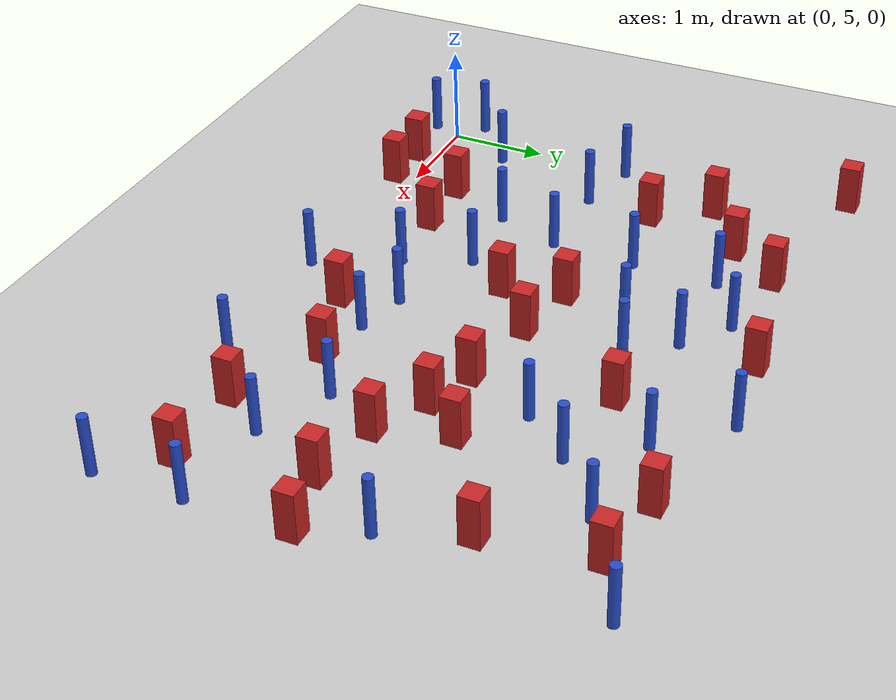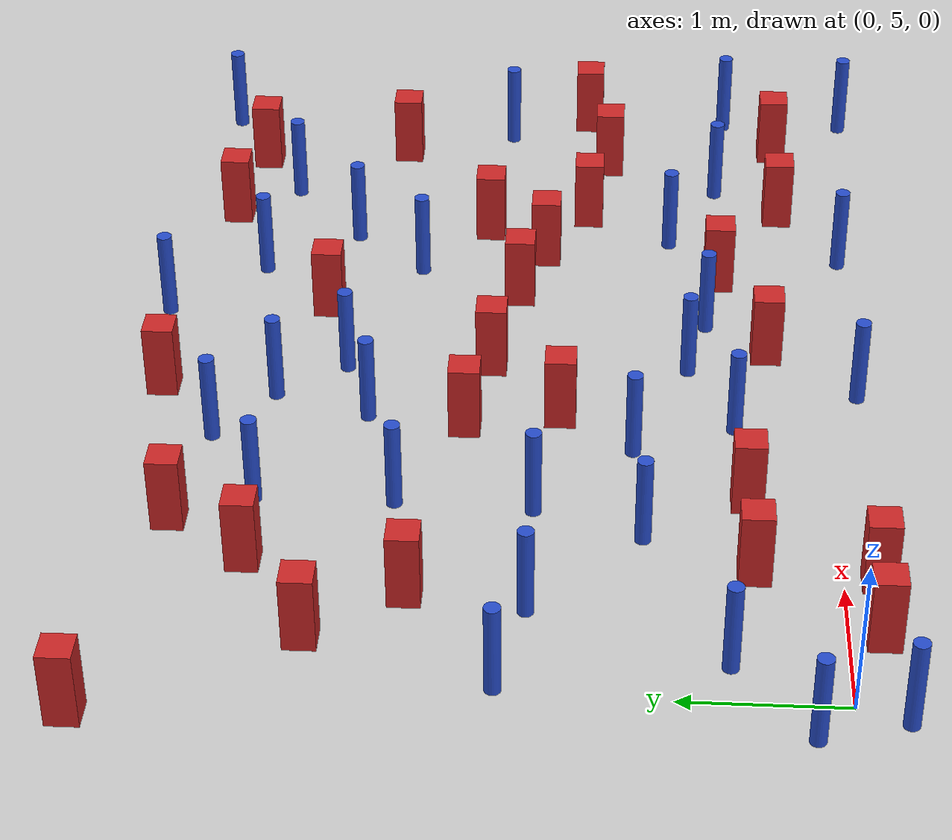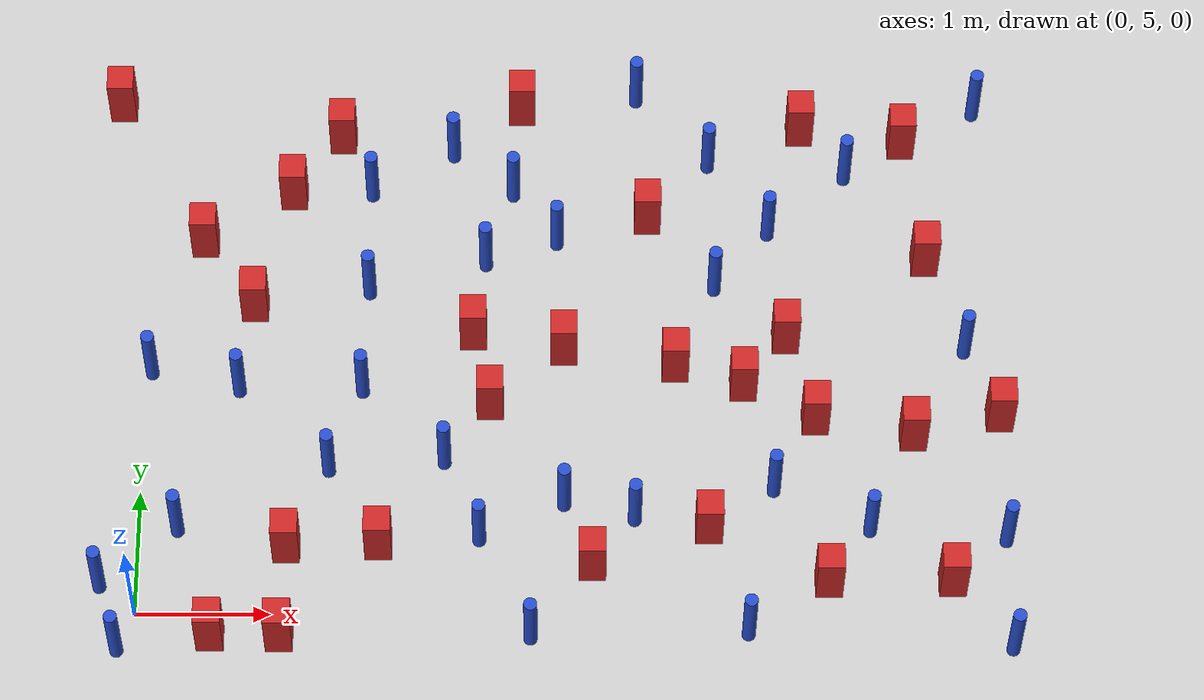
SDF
<sdf version="1.6">
 <world name="default">
  <model name="ground_plane">
   <static>1</static>
   <link name="link">
    <collision name="collision">
     <geometry><plane><normal>0 0 1</normal><size>100 100</size></plane></geometry>
     <surface><friction><ode><mu>100</mu><mu2>50</mu2></ode></friction></surface>
    </collision>
    <visual name="visual">
     <cast_shadows>0</cast_shadows>
     <geometry><plane><normal>0 0 1</normal><size>100 100</size></plane></geometry>
     <material>
      <ambient>1.0 1.0 1.0 1.0</ambient>
      <diffuse>0.8 0.8 0.8 1.0</diffuse>
      <specular>0.01 0.01 0.01 1.000000</specular>
     </material>
    </visual>
   </link>
  </model>
  <model name="pole_obstacle10">
   <static>true</static>
   <pose>6.43006931525 5.59276663731 7.38925637345e-09 -8.47170692796e-08 1.24976764786e-08 -1.74513093032e-07</pose>
   <link name="link">
    <pose>0 0 0.3 0 -0 0</pose>
    <inertial>
     <mass>1</mass>
     <inertia><ixx>0.145833</ixx><ixy>0</ixy><ixz>0</ixz><iyy>0.145833</iyy><iyz>0</iyz><izz>0.125</izz></inertia>
    </inertial>
    <collision name="collision">
     <geometry><cylinder><radius>0.05</radius><length>.6</length></cylinder></geometry>
    </collision>
    <visual name="visual">
     <geometry><cylinder><radius>0.05</radius><length>.6</length></cylinder></geometry>
     <material>
      <script><name>Gazebo/Blue</name><uri>file://media/materials/scripts/gazebo.material</uri></script>
     </material>
    </visual>
   </link>
  </model>
  <model name="pole_obstacle12">
   <static>true</static>
   <pose>6.43960804948 4.71248183484 7.38925637345e-09 -8.47170692796e-08 1.24976764786e-08 -1.74513093032e-07</pose>
   <link name="link">
    <pose>0 0 0.3 0 -0 0</pose>
    <inertial>
     <mass>1</mass>
     <inertia><ixx>0.145833</ixx><ixy>0</ixy><ixz>0</ixz><iyy>0.145833</iyy><iyz>0</iyz><izz>0.125</izz></inertia>
    </inertial>
    <collision name="collision">
     <geometry><cylinder><radius>0.05</radius><length>.6</length></cylinder></geometry>
    </collision>
    <visual name="visual">
     <geometry><cylinder><radius>0.05</radius><length>.6</length></cylinder></geometry>
     <material>
      <script><name>Gazebo/Blue</name><uri>file://media/materials/scripts/gazebo.material</uri></script>
     </material>
    </visual>
   </link>
  </model>
  <model name="pole_obstacle16">
   <static>true</static>
   <pose>2.56210407748 7.94373659365 7.38925637345e-09 -8.47170692798e-08 1.24976765033e-08 -1.74513093019e-07</pose>
   <link name="link">
    <pose>0 0 0.3 0 -0 0</pose>
    <inertial>
     <mass>1</mass>
     <inertia><ixx>0.145833</ixx><ixy>0</ixy><ixz>0</ixz><iyy>0.145833</iyy><iyz>0</iyz><izz>0.125</izz></inertia>
    </inertial>
    <collision name="collision">
     <geometry><cylinder><radius>0.05</radius><length>.6</length></cylinder></geometry>
    </collision>
    <visual name="visual">
     <geometry><cylinder><radius>0.05</radius><length>.6</length></cylinder></geometry>
     <material>
      <script><name>Gazebo/Blue</name><uri>file://media/materials/scripts/gazebo.material</uri></script>
     </material>
    </visual>
   </link>
  </model>
  <model name="pole_obstacle17">
   <static>true</static>
   <pose>3.67841027492 5.769085031 7.38925637345e-09 -8.47170692798e-08 1.24976765033e-08 -1.74513093019e-07</pose>
   <link name="link">
    <pose>0 0 0.3 0 -0 0</pose>
    <inertial>
     <mass>1</mass>
     <inertia><ixx>0.145833</ixx><ixy>0</ixy><ixz>0</ixz><iyy>0.145833</iyy><iyz>0</iyz><izz>0.125</izz></inertia>
    </inertial>
    <collision name="collision">
     <geometry><cylinder><radius>0.05</radius><length>.6</length></cylinder></geometry>
    </collision>
    <visual name="visual">
     <geometry><cylinder><radius>0.05</radius><length>.6</length></cylinder></geometry>
     <material>
      <script><name>Gazebo/Blue</name><uri>file://media/materials/scripts/gazebo.material</uri></script>
     </material>
    </visual>
   </link>
  </model>
  <model name="square_post_obstacle13">
   <static>true</static>
   <pose>2.60032660815 6.71405022309 1.91545236811e-07 -7.35059704564e-06 1.12565212e-07 2.39332434364e-05</pose>
   <link name="link">
    <pose>0 0 0.25 0 -0 0</pose>
    <inertial>
     <mass>100</mass>
     <inertia>
      <ixx>0.166667</ixx>
      <ixy>0</ixy>
      <ixz>0</ixz>
      <iyy>0.166667</iyy>
      <iyz>0</iyz>
      <izz>0.166667</izz>
     </inertia>
    </inertial>
    <collision name="collision"><geometry><box><size>.2 .2 .5</size></box></geometry></collision>
    <visual name="visual">
     <geometry><box><size>.2 .2 .5</size></box></geometry>
     <material>
      <script><name>Gazebo/Red</name><uri>file://media/materials/scripts/gazebo.material</uri></script>
     </material>
    </visual>
   </link>
  </model>
  <model name="pole_obstacle18">
   <static>true</static>
   <pose>-0.269620902724 5.22114954407 7.38925637345e-09 -8.47170692799e-08 1.24976765096e-08 -1.74513093014e-07</pose>
   <link name="link">
    <pose>0 0 0.3 0 -0 0</pose>
    <inertial>
     <mass>1</mass>
     <inertia><ixx>0.145833</ixx><ixy>0</ixy><ixz>0</ixz><iyy>0.145833</iyy><iyz>0</iyz><izz>0.125</izz></inertia>
    </inertial>
    <collision name="collision">
     <geometry><cylinder><radius>0.05</radius><length>.6</length></cylinder></geometry>
    </collision>
    <visual name="visual">
     <geometry><cylinder><radius>0.05</radius><length>.6</length></cylinder></geometry>
     <material>
      <script><name>Gazebo/Blue</name><uri>file://media/materials/scripts/gazebo.material</uri></script>
     </material>
    </visual>
   </link>
  </model>
  <model name="square_post_obstacle14">
   <static>true</static>
   <pose>-0.260426917664 9.33828999109 1.91545236811e-07 -7.35059704564e-06 1.12565212e-07 2.39332434364e-05</pose>
   <link name="link">
    <pose>0 0 0.25 0 -0 0</pose>
    <inertial>
     <mass>100</mass>
     <inertia>
      <ixx>0.166667</ixx>
      <ixy>0</ixy>
      <ixz>0</ixz>
      <iyy>0.166667</iyy>
      <iyz>0</iyz>
      <izz>0.166667</izz>
     </inertia>
    </inertial>
    <collision name="collision"><geometry><box><size>.2 .2 .5</size></box></geometry></collision>
    <visual name="visual">
     <geometry><box><size>.2 .2 .5</size></box></geometry>
     <material>
      <script><name>Gazebo/Red</name><uri>file://media/materials/scripts/gazebo.material</uri></script>
     </material>
    </visual>
   </link>
  </model>
  <model name="square_post_obstacle16">
   <static>true</static>
   <pose>1.10032722098 5.52364395335 1.91545236811e-07 -7.35059704564e-06 1.12565212e-07 2.39332434364e-05</pose>
   <link name="link">
    <pose>0 0 0.25 0 -0 0</pose>
    <inertial>
     <mass>100</mass>
     <inertia>
      <ixx>0.166667</ixx>
      <ixy>0</ixy>
      <ixz>0</ixz>
      <iyy>0.166667</iyy>
      <iyz>0</iyz>
      <izz>0.166667</izz>
     </inertia>
    </inertial>
    <collision name="collision"><geometry><box><size>.2 .2 .5</size></box></geometry></collision>
    <visual name="visual">
     <geometry><box><size>.2 .2 .5</size></box></geometry>
     <material>
      <script><name>Gazebo/Red</name><uri>file://media/materials/scripts/gazebo.material</uri></script>
     </material>
    </visual>
   </link>
  </model>
  <model name="pole_obstacle24">
   <static>true</static>
   <pose>0.29077984263 5.68026242619 7.38925637345e-09 -8.47170692799e-08 1.24976765101e-08 -1.74513093014e-07</pose>
   <link name="link">
    <pose>0 0 0.3 0 -0 0</pose>
    <inertial>
     <mass>1</mass>
     <inertia><ixx>0.145833</ixx><ixy>0</ixy><ixz>0</ixz><iyy>0.145833</iyy><iyz>0</iyz><izz>0.125</izz></inertia>
    </inertial>
    <collision name="collision">
     <geometry><cylinder><radius>0.05</radius><length>.6</length></cylinder></geometry>
    </collision>
    <visual name="visual">
     <geometry><cylinder><radius>0.05</radius><length>.6</length></cylinder></geometry>
     <material>
      <script><name>Gazebo/Blue</name><uri>file://media/materials/scripts/gazebo.material</uri></script>
     </material>
    </visual>
   </link>
  </model>
  <model name="pole_obstacle27">
   <static>true</static>
   <pose>6.32869426466 9.28908974941 7.38925637345e-09 -8.471706928e-08 1.24976765081e-08 -1.74513093015e-07</pose>
   <link name="link">
    <pose>0 0 0.3 0 -0 0</pose>
    <inertial>
     <mass>1</mass>
     <inertia><ixx>0.145833</ixx><ixy>0</ixy><ixz>0</ixz><iyy>0.145833</iyy><iyz>0</iyz><izz>0.125</izz></inertia>
    </inertial>
    <collision name="collision">
     <geometry><cylinder><radius>0.05</radius><length>.6</length></cylinder></geometry>
    </collision>
    <visual name="visual">
     <geometry><cylinder><radius>0.05</radius><length>.6</length></cylinder></geometry>
     <material>
      <script><name>Gazebo/Blue</name><uri>file://media/materials/scripts/gazebo.material</uri></script>
     </material>
    </visual>
   </link>
  </model>
  <model name="square_post_obstacle21">
   <static>true</static>
   <pose>3.15343993238 7.18347738808 1.91545236811e-07 -7.35059704564e-06 1.12565212e-07 2.39332434364e-05</pose>
   <link name="link">
    <pose>0 0 0.25 0 -0 0</pose>
    <inertial>
     <mass>100</mass>
     <inertia>
      <ixx>0.166667</ixx>
      <ixy>0</ixy>
      <ixz>0</ixz>
      <iyy>0.166667</iyy>
      <iyz>0</iyz>
      <izz>0.166667</izz>
     </inertia>
    </inertial>
    <collision name="collision"><geometry><box><size>.2 .2 .5</size></box></geometry></collision>
    <visual name="visual">
     <geometry><box><size>.2 .2 .5</size></box></geometry>
     <material>
      <script><name>Gazebo/Red</name><uri>file://media/materials/scripts/gazebo.material</uri></script>
     </material>
    </visual>
   </link>
  </model>
  <model name="square_post_obstacle27">
   <static>true</static>
   <pose>0.416787845511 8.12097560887 1.91545236811e-07 -7.35059704564e-06 1.12565212e-07 2.39332434364e-05</pose>
   <link name="link">
    <pose>0 0 0.25 0 -0 0</pose>
    <inertial>
     <mass>100</mass>
     <inertia>
      <ixx>0.166667</ixx>
      <ixy>0</ixy>
      <ixz>0</ixz>
      <iyy>0.166667</iyy>
      <iyz>0</iyz>
      <izz>0.166667</izz>
     </inertia>
    </inertial>
    <collision name="collision"><geometry><box><size>.2 .2 .5</size></box></geometry></collision>
    <visual name="visual">
     <geometry><box><size>.2 .2 .5</size></box></geometry>
     <material>
      <script><name>Gazebo/Red</name><uri>file://media/materials/scripts/gazebo.material</uri></script>
     </material>
    </visual>
   </link>
  </model>
  <model name="square_post_obstacle28">
   <static>true</static>
   <pose>4.50222056311 6.87441107333 1.91545236811e-07 -7.35059704564e-06 1.12565212e-07 2.39332434364e-05</pose>
   <link name="link">
    <pose>0 0 0.25 0 -0 0</pose>
    <inertial>
     <mass>100</mass>
     <inertia>
      <ixx>0.166667</ixx>
      <ixy>0</ixy>
      <ixz>0</ixz>
      <iyy>0.166667</iyy>
      <iyz>0</iyz>
      <izz>0.166667</izz>
     </inertia>
    </inertial>
    <collision name="collision"><geometry><box><size>.2 .2 .5</size></box></geometry></collision>
    <visual name="visual">
     <geometry><box><size>.2 .2 .5</size></box></geometry>
     <material>
      <script><name>Gazebo/Red</name><uri>file://media/materials/scripts/gazebo.material</uri></script>
     </material>
    </visual>
   </link>
  </model>
  <model name="pole_obstacle34">
   <static>true</static>
   <pose>4.71428031002 8.21276174655 7.38925637345e-09 -8.471706928e-08 1.24976765081e-08 -1.74513093015e-07</pose>
   <link name="link">
    <pose>0 0 0.3 0 -0 0</pose>
    <inertial>
     <mass>1</mass>
     <inertia><ixx>0.145833</ixx><ixy>0</ixy><ixz>0</ixz><iyy>0.145833</iyy><iyz>0</iyz><izz>0.125</izz></inertia>
    </inertial>
    <collision name="collision">
     <geometry><cylinder><radius>0.05</radius><length>.6</length></cylinder></geometry>
    </collision>
    <visual name="visual">
     <geometry><cylinder><radius>0.05</radius><length>.6</length></cylinder></geometry>
     <material>
      <script><name>Gazebo/Blue</name><uri>file://media/materials/scripts/gazebo.material</uri></script>
     </material>
    </visual>
   </link>
  </model>
  <model name="square_post_obstacle33">
   <static>true</static>
   <pose>5.03672049876 6.58728582396 1.91545236811e-07 -7.35059704564e-06 1.12565212e-07 2.39332434364e-05</pose>
   <link name="link">
    <pose>0 0 0.25 0 -0 0</pose>
    <inertial>
     <mass>100</mass>
     <inertia>
      <ixx>0.166667</ixx>
      <ixy>0</ixy>
      <ixz>0</ixz>
      <iyy>0.166667</iyy>
      <iyz>0</iyz>
      <izz>0.166667</izz>
     </inertia>
    </inertial>
    <collision name="collision"><geometry><box><size>.2 .2 .5</size></box></geometry></collision>
    <visual name="visual">
     <geometry><box><size>.2 .2 .5</size></box></geometry>
     <material>
      <script><name>Gazebo/Red</name><uri>file://media/materials/scripts/gazebo.material</uri></script>
     </material>
    </visual>
   </link>
  </model>
  <model name="square_post_obstacle34">
   <static>true</static>
   <pose>0.560522421375 4.80439751572 1.91545236811e-07 -7.35059704564e-06 1.12565212e-07 2.39332434364e-05</pose>
   <link name="link">
    <pose>0 0 0.25 0 -0 0</pose>
    <inertial>
     <mass>100</mass>
     <inertia>
      <ixx>0.166667</ixx>
      <ixy>0</ixy>
      <ixz>0</ixz>
      <iyy>0.166667</iyy>
      <iyz>0</iyz>
      <izz>0.166667</izz>
     </inertia>
    </inertial>
    <collision name="collision"><geometry><box><size>.2 .2 .5</size></box></geometry></collision>
    <visual name="visual">
     <geometry><box><size>.2 .2 .5</size></box></geometry>
     <material>
      <script><name>Gazebo/Red</name><uri>file://media/materials/scripts/gazebo.material</uri></script>
     </material>
    </visual>
   </link>
  </model>
  <model name="square_post_obstacle35">
   <static>true</static>
   <pose>5.1023959828 5.23852591264 1.91545236811e-07 -7.35059704564e-06 1.12565212e-07 2.39332434364e-05</pose>
   <link name="link">
    <pose>0 0 0.25 0 -0 0</pose>
    <inertial>
     <mass>100</mass>
     <inertia>
      <ixx>0.166667</ixx>
      <ixy>0</ixy>
      <ixz>0</ixz>
      <iyy>0.166667</iyy>
      <iyz>0</iyz>
      <izz>0.166667</izz>
     </inertia>
    </inertial>
    <collision name="collision"><geometry><box><size>.2 .2 .5</size></box></geometry></collision>
    <visual name="visual">
     <geometry><box><size>.2 .2 .5</size></box></geometry>
     <material>
      <script><name>Gazebo/Red</name><uri>file://media/materials/scripts/gazebo.material</uri></script>
     </material>
    </visual>
   </link>
  </model>
  <model name="square_post_obstacle39">
   <static>true</static>
   <pose>6.01422517366 5.24501323723 1.91545236811e-07 -7.35059704564e-06 1.12565212e-07 2.39332434364e-05</pose>
   <link name="link">
    <pose>0 0 0.25 0 -0 0</pose>
    <inertial>
     <mass>100</mass>
     <inertia>
      <ixx>0.166667</ixx>
      <ixy>0</ixy>
      <ixz>0</ixz>
      <iyy>0.166667</iyy>
      <iyz>0</iyz>
      <izz>0.166667</izz>
     </inertia>
    </inertial>
    <collision name="collision"><geometry><box><size>.2 .2 .5</size></box></geometry></collision>
    <visual name="visual">
     <geometry><box><size>.2 .2 .5</size></box></geometry>
     <material>
      <script><name>Gazebo/Red</name><uri>file://media/materials/scripts/gazebo.material</uri></script>
     </material>
    </visual>
   </link>
  </model>
  <model name="pole_obstacle67">
   <static>true</static>
   <pose>1.68659432122 8.56273934027 7.38925637345e-09 -8.47170692798e-08 1.24976764881e-08 -1.74513093027e-07</pose>
   <link name="link">
    <pose>0 0 0.3 0 -0 0</pose>
    <inertial>
     <mass>1</mass>
     <inertia><ixx>0.145833</ixx><ixy>0</ixy><ixz>0</ixz><iyy>0.145833</iyy><iyz>0</iyz><izz>0.125</izz></inertia>
    </inertial>
    <collision name="collision">
     <geometry><cylinder><radius>0.05</radius><length>.6</length></cylinder></geometry>
    </collision>
    <visual name="visual">
     <geometry><cylinder><radius>0.05</radius><length>.6</length></cylinder></geometry>
     <material>
      <script><name>Gazebo/Blue</name><uri>file://media/materials/scripts/gazebo.material</uri></script>
     </material>
    </visual>
   </link>
  </model>
  <model name="square_post_obstacle70">
   <static>true</static>
   <pose>1.08526609354 8.54279947761 1.91545236811e-07 -7.35059704564e-06 1.12565212e-07 2.39332434364e-05</pose>
   <link name="link">
    <pose>0 0 0.25 0 -0 0</pose>
    <inertial>
     <mass>100</mass>
     <inertia>
      <ixx>0.166667</ixx>
      <ixy>0</ixy>
      <ixz>0</ixz>
      <iyy>0.166667</iyy>
      <iyz>0</iyz>
      <izz>0.166667</izz>
     </inertia>
    </inertial>
    <collision name="collision"><geometry><box><size>.2 .2 .5</size></box></geometry></collision>
    <visual name="visual">
     <geometry><box><size>.2 .2 .5</size></box></geometry>
     <material>
      <script><name>Gazebo/Red</name><uri>file://media/materials/scripts/gazebo.material</uri></script>
     </material>
    </visual>
   </link>
  </model>
  <model name="square_post_obstacle84">
   <static>true</static>
   <pose>3.79416221275 8.32659065259 1.91545236811e-07 -7.35059704564e-06 1.12565212e-07 2.39332434364e-05</pose>
   <link name="link">
    <pose>0 0 0.25 0 -0 0</pose>
    <inertial>
     <mass>100</mass>
     <inertia>
      <ixx>0.166667</ixx>
      <ixy>0</ixy>
      <ixz>0</ixz>
      <iyy>0.166667</iyy>
      <iyz>0</iyz>
      <izz>0.166667</izz>
     </inertia>
    </inertial>
    <collision name="collision"><geometry><box><size>.2 .2 .5</size></box></geometry></collision>
    <visual name="visual">
     <geometry><box><size>.2 .2 .5</size></box></geometry>
     <material>
      <script><name>Gazebo/Red</name><uri>file://media/materials/scripts/gazebo.material</uri></script>
     </material>
    </visual>
   </link>
  </model>
  <model name="square_post_obstacle85">
   <static>true</static>
   <pose>4.97808028679 9.11191016525 1.91545236811e-07 -7.35059704564e-06 1.12565212e-07 2.39332434364e-05</pose>
   <link name="link">
    <pose>0 0 0.25 0 -0 0</pose>
    <inertial>
     <mass>100</mass>
     <inertia>
      <ixx>0.166667</ixx>
      <ixy>0</ixy>
      <ixz>0</ixz>
      <iyy>0.166667</iyy>
      <iyz>0</iyz>
      <izz>0.166667</izz>
     </inertia>
    </inertial>
    <collision name="collision"><geometry><box><size>.2 .2 .5</size></box></geometry></collision>
    <visual name="visual">
     <geometry><box><size>.2 .2 .5</size></box></geometry>
     <material>
      <script><name>Gazebo/Red</name><uri>file://media/materials/scripts/gazebo.material</uri></script>
     </material>
    </visual>
   </link>
  </model>
  <model name="square_post_obstacle99">
   <static>true</static>
   <pose>1.06667808192 4.79684515471 1.91545236811e-07 -7.35059704564e-06 1.12565212e-07 2.39332434364e-05</pose>
   <link name="link">
    <pose>0 0 0.25 0 -0 0</pose>
    <inertial>
     <mass>100</mass>
     <inertia>
      <ixx>0.166667</ixx>
      <ixy>0</ixy>
      <ixz>0</ixz>
      <iyy>0.166667</iyy>
      <iyz>0</iyz>
      <izz>0.166667</izz>
     </inertia>
    </inertial>
    <collision name="collision"><geometry><box><size>.2 .2 .5</size></box></geometry></collision>
    <visual name="visual">
     <geometry><box><size>.2 .2 .5</size></box></geometry>
     <material>
      <script><name>Gazebo/Red</name><uri>file://media/materials/scripts/gazebo.material</uri></script>
     </material>
    </visual>
   </link>
  </model>
  <model name="pole_obstacle106">
   <static>true</static>
   <pose>3.71770598092 9.41233565927 7.38925637345e-09 -8.47170692793e-08 1.24976764408e-08 -1.74513093041e-07</pose>
   <link name="link">
    <pose>0 0 0.3 0 -0 0</pose>
    <inertial>
     <mass>1</mass>
     <inertia><ixx>0.145833</ixx><ixy>0</ixy><ixz>0</ixz><iyy>0.145833</iyy><iyz>0</iyz><izz>0.125</izz></inertia>
    </inertial>
    <collision name="collision">
     <geometry><cylinder><radius>0.05</radius><length>.6</length></cylinder></geometry>
    </collision>
    <visual name="visual">
     <geometry><cylinder><radius>0.05</radius><length>.6</length></cylinder></geometry>
     <material>
      <script><name>Gazebo/Blue</name><uri>file://media/materials/scripts/gazebo.material</uri></script>
     </material>
    </visual>
   </link>
  </model>
  <model name="square_post_obstacle101">
   <static>true</static>
   <pose>5.90411930405 7.95217327398 1.91545236811e-07 -7.35059704564e-06 1.12565212e-07 2.39332434364e-05</pose>
   <link name="link">
    <pose>0 0 0.25 0 -0 0</pose>
    <inertial>
     <mass>100</mass>
     <inertia>
      <ixx>0.166667</ixx>
      <ixy>0</ixy>
      <ixz>0</ixz>
      <iyy>0.166667</iyy>
      <iyz>0</iyz>
      <izz>0.166667</izz>
     </inertia>
    </inertial>
    <collision name="collision"><geometry><box><size>.2 .2 .5</size></box></geometry></collision>
    <visual name="visual">
     <geometry><box><size>.2 .2 .5</size></box></geometry>
     <material>
      <script><name>Gazebo/Red</name><uri>file://media/materials/scripts/gazebo.material</uri></script>
     </material>
    </visual>
   </link>
  </model>
  <model name="square_post_obstacle108">
   <static>true</static>
   <pose>6.42050475981 6.61042274541 1.91545236811e-07 -7.35059704564e-06 1.12565212e-07 2.39332434364e-05</pose>
   <link name="link">
    <pose>0 0 0.25 0 -0 0</pose>
    <inertial>
     <mass>100</mass>
     <inertia>
      <ixx>0.166667</ixx>
      <ixy>0</ixy>
      <ixz>0</ixz>
      <iyy>0.166667</iyy>
      <iyz>0</iyz>
      <izz>0.166667</izz>
     </inertia>
    </inertial>
    <collision name="collision"><geometry><box><size>.2 .2 .5</size></box></geometry></collision>
    <visual name="visual">
     <geometry><box><size>.2 .2 .5</size></box></geometry>
     <material>
      <script><name>Gazebo/Red</name><uri>file://media/materials/scripts/gazebo.material</uri></script>
     </material>
    </visual>
   </link>
  </model>
  <model name="square_post_obstacle111">
   <static>true</static>
   <pose>0.812612014045 7.56063428257 1.91545236811e-07 -7.35059704564e-06 1.12565212e-07 2.39332434364e-05</pose>
   <link name="link">
    <pose>0 0 0.25 0 -0 0</pose>
    <inertial>
     <mass>100</mass>
     <inertia>
      <ixx>0.166667</ixx>
      <ixy>0</ixy>
      <ixz>0</ixz>
      <iyy>0.166667</iyy>
      <iyz>0</iyz>
      <izz>0.166667</izz>
     </inertia>
    </inertial>
    <collision name="collision"><geometry><box><size>.2 .2 .5</size></box></geometry></collision>
    <visual name="visual">
     <geometry><box><size>.2 .2 .5</size></box></geometry>
     <material>
      <script><name>Gazebo/Red</name><uri>file://media/materials/scripts/gazebo.material</uri></script>
     </material>
    </visual>
   </link>
  </model>
  <model name="square_post_obstacle116">
   <static>true</static>
   <pose>3.99164832399 7.0336885954 1.91545236811e-07 -7.35059704564e-06 1.12565212e-07 2.39332434364e-05</pose>
   <link name="link">
    <pose>0 0 0.25 0 -0 0</pose>
    <inertial>
     <mass>100</mass>
     <inertia>
      <ixx>0.166667</ixx>
      <ixy>0</ixy>
      <ixz>0</ixz>
      <iyy>0.166667</iyy>
      <iyz>0</iyz>
      <izz>0.166667</izz>
     </inertia>
    </inertial>
    <collision name="collision"><geometry><box><size>.2 .2 .5</size></box></geometry></collision>
    <visual name="visual">
     <geometry><box><size>.2 .2 .5</size></box></geometry>
     <material>
      <script><name>Gazebo/Red</name><uri>file://media/materials/scripts/gazebo.material</uri></script>
     </material>
    </visual>
   </link>
  </model>
  <model name="pole_obstacle120">
   <static>true</static>
   <pose>0.0504425942291 7.0064989169 7.38925637345e-09 -8.471706928e-08 1.2497676505e-08 -1.74513093019e-07</pose>
   <link name="link">
    <pose>0 0 0.3 0 -0 0</pose>
    <inertial>
     <mass>1</mass>
     <inertia><ixx>0.145833</ixx><ixy>0</ixy><ixz>0</ixz><iyy>0.145833</iyy><iyz>0</iyz><izz>0.125</izz></inertia>
    </inertial>
    <collision name="collision">
     <geometry><cylinder><radius>0.05</radius><length>.6</length></cylinder></geometry>
    </collision>
    <visual name="visual">
     <geometry><cylinder><radius>0.05</radius><length>.6</length></cylinder></geometry>
     <material>
      <script><name>Gazebo/Blue</name><uri>file://media/materials/scripts/gazebo.material</uri></script>
     </material>
    </visual>
   </link>
  </model>
  <model name="pole_obstacle121">
   <static>true</static>
   <pose>2.76947962669 8.56069283262 7.38925637345e-09 -8.47170692793e-08 1.24976764408e-08 -1.74513093041e-07</pose>
   <link name="link">
    <pose>0 0 0.3 0 -0 0</pose>
    <inertial>
     <mass>1</mass>
     <inertia><ixx>0.145833</ixx><ixy>0</ixy><ixz>0</ixz><iyy>0.145833</iyy><iyz>0</iyz><izz>0.125</izz></inertia>
    </inertial>
    <collision name="collision">
     <geometry><cylinder><radius>0.05</radius><length>.6</length></cylinder></geometry>
    </collision>
    <visual name="visual">
     <geometry><cylinder><radius>0.05</radius><length>.6</length></cylinder></geometry>
     <material>
      <script><name>Gazebo/Blue</name><uri>file://media/materials/scripts/gazebo.material</uri></script>
     </material>
    </visual>
   </link>
  </model>
  <model name="pole_obstacle129">
   <static>true</static>
   <pose>1.64110255069 6.84719852452 7.38925637345e-09 -8.47170692799e-08 1.24976765033e-08 -1.74513093018e-07</pose>
   <link name="link">
    <pose>0 0 0.3 0 -0 0</pose>
    <inertial>
     <mass>1</mass>
     <inertia><ixx>0.145833</ixx><ixy>0</ixy><ixz>0</ixz><iyy>0.145833</iyy><iyz>0</iyz><izz>0.125</izz></inertia>
    </inertial>
    <collision name="collision">
     <geometry><cylinder><radius>0.05</radius><length>.6</length></cylinder></geometry>
    </collision>
    <visual name="visual">
     <geometry><cylinder><radius>0.05</radius><length>.6</length></cylinder></geometry>
     <material>
      <script><name>Gazebo/Blue</name><uri>file://media/materials/scripts/gazebo.material</uri></script>
     </material>
    </visual>
   </link>
  </model>
  <model name="pole_obstacle132">
   <static>true</static>
   <pose>1.40105028251 6.17930076612 7.38925637345e-09 -8.47170692799e-08 1.24976765033e-08 -1.74513093018e-07</pose>
   <link name="link">
    <pose>0 0 0.3 0 -0 0</pose>
    <inertial>
     <mass>1</mass>
     <inertia><ixx>0.145833</ixx><ixy>0</ixy><ixz>0</ixz><iyy>0.145833</iyy><iyz>0</iyz><izz>0.125</izz></inertia>
    </inertial>
    <collision name="collision">
     <geometry><cylinder><radius>0.05</radius><length>.6</length></cylinder></geometry>
    </collision>
    <visual name="visual">
     <geometry><cylinder><radius>0.05</radius><length>.6</length></cylinder></geometry>
     <material>
      <script><name>Gazebo/Blue</name><uri>file://media/materials/scripts/gazebo.material</uri></script>
     </material>
    </visual>
   </link>
  </model>
  <model name="square_post_obstacle136">
   <static>true</static>
   <pose>4.22741774872 5.67500038639 1.91545236811e-07 -7.35059704564e-06 1.12565212e-07 2.39332434364e-05</pose>
   <link name="link">
    <pose>0 0 0.25 0 -0 0</pose>
    <inertial>
     <mass>100</mass>
     <inertia>
      <ixx>0.166667</ixx>
      <ixy>0</ixy>
      <ixz>0</ixz>
      <iyy>0.166667</iyy>
      <iyz>0</iyz>
      <izz>0.166667</izz>
     </inertia>
    </inertial>
    <collision name="collision"><geometry><box><size>.2 .2 .5</size></box></geometry></collision>
    <visual name="visual">
     <geometry><box><size>.2 .2 .5</size></box></geometry>
     <material>
      <script><name>Gazebo/Red</name><uri>file://media/materials/scripts/gazebo.material</uri></script>
     </material>
    </visual>
   </link>
  </model>
  <model name="pole_obstacle141">
   <static>true</static>
   <pose>4.26581797627 8.81837719685 7.38925637345e-09 -8.471706928e-08 1.24976765081e-08 -1.74513093015e-07</pose>
   <link name="link">
    <pose>0 0 0.3 0 -0 0</pose>
    <inertial>
     <mass>1</mass>
     <inertia><ixx>0.145833</ixx><ixy>0</ixy><ixz>0</ixz><iyy>0.145833</iyy><iyz>0</iyz><izz>0.125</izz></inertia>
    </inertial>
    <collision name="collision">
     <geometry><cylinder><radius>0.05</radius><length>.6</length></cylinder></geometry>
    </collision>
    <visual name="visual">
     <geometry><cylinder><radius>0.05</radius><length>.6</length></cylinder></geometry>
     <material>
      <script><name>Gazebo/Blue</name><uri>file://media/materials/scripts/gazebo.material</uri></script>
     </material>
    </visual>
   </link>
  </model>
  <model name="pole_obstacle149">
   <static>true</static>
   <pose>2.31026397383 8.91384483538 7.38925637345e-09 -8.47170692793e-08 1.24976764408e-08 -1.74513093041e-07</pose>
   <link name="link">
    <pose>0 0 0.3 0 -0 0</pose>
    <inertial>
     <mass>1</mass>
     <inertia><ixx>0.145833</ixx><ixy>0</ixy><ixz>0</ixz><iyy>0.145833</iyy><iyz>0</iyz><izz>0.125</izz></inertia>
    </inertial>
    <collision name="collision">
     <geometry><cylinder><radius>0.05</radius><length>.6</length></cylinder></geometry>
    </collision>
    <visual name="visual">
     <geometry><cylinder><radius>0.05</radius><length>.6</length></cylinder></geometry>
     <material>
      <script><name>Gazebo/Blue</name><uri>file://media/materials/scripts/gazebo.material</uri></script>
     </material>
    </visual>
   </link>
  </model>
  <model name="pole_obstacle153">
   <static>true</static>
   <pose>5.31361686569 8.70877145318 7.38925637345e-09 -8.471706928e-08 1.24976765081e-08 -1.74513093015e-07</pose>
   <link name="link">
    <pose>0 0 0.3 0 -0 0</pose>
    <inertial>
     <mass>1</mass>
     <inertia><ixx>0.145833</ixx><ixy>0</ixy><ixz>0</ixz><iyy>0.145833</iyy><iyz>0</iyz><izz>0.125</izz></inertia>
    </inertial>
    <collision name="collision">
     <geometry><cylinder><radius>0.05</radius><length>.6</length></cylinder></geometry>
    </collision>
    <visual name="visual">
     <geometry><cylinder><radius>0.05</radius><length>.6</length></cylinder></geometry>
     <material>
      <script><name>Gazebo/Blue</name><uri>file://media/materials/scripts/gazebo.material</uri></script>
     </material>
    </visual>
   </link>
  </model>
  <model name="pole_obstacle155">
   <static>true</static>
   <pose>6.17875227643 7.18255026079 7.38925637345e-09 -8.47170692796e-08 1.24976764786e-08 -1.74513093032e-07</pose>
   <link name="link">
    <pose>0 0 0.3 0 -0 0</pose>
    <inertial>
     <mass>1</mass>
     <inertia><ixx>0.145833</ixx><ixy>0</ixy><ixz>0</ixz><iyy>0.145833</iyy><iyz>0</iyz><izz>0.125</izz></inertia>
    </inertial>
    <collision name="collision">
     <geometry><cylinder><radius>0.05</radius><length>.6</length></cylinder></geometry>
    </collision>
    <visual name="visual">
     <geometry><cylinder><radius>0.05</radius><length>.6</length></cylinder></geometry>
     <material>
      <script><name>Gazebo/Blue</name><uri>file://media/materials/scripts/gazebo.material</uri></script>
     </material>
    </visual>
   </link>
  </model>
  <model name="pole_obstacle157">
   <static>true</static>
   <pose>3.10108925175 8.13134203097 7.38925637345e-09 -8.47170692793e-08 1.24976764408e-08 -1.74513093041e-07</pose>
   <link name="link">
    <pose>0 0 0.3 0 -0 0</pose>
    <inertial>
     <mass>1</mass>
     <inertia><ixx>0.145833</ixx><ixy>0</ixy><ixz>0</ixz><iyy>0.145833</iyy><iyz>0</iyz><izz>0.125</izz></inertia>
    </inertial>
    <collision name="collision">
     <geometry><cylinder><radius>0.05</radius><length>.6</length></cylinder></geometry>
    </collision>
    <visual name="visual">
     <geometry><cylinder><radius>0.05</radius><length>.6</length></cylinder></geometry>
     <material>
      <script><name>Gazebo/Blue</name><uri>file://media/materials/scripts/gazebo.material</uri></script>
     </material>
    </visual>
   </link>
  </model>
  <model name="square_post_obstacle158">
   <static>true</static>
   <pose>1.45315813037 9.04551744333 1.91545236811e-07 -7.35059704564e-06 1.12565212e-07 2.39332434364e-05</pose>
   <link name="link">
    <pose>0 0 0.25 0 -0 0</pose>
    <inertial>
     <mass>100</mass>
     <inertia>
      <ixx>0.166667</ixx>
      <ixy>0</ixy>
      <ixz>0</ixz>
      <iyy>0.166667</iyy>
      <iyz>0</iyz>
      <izz>0.166667</izz>
     </inertia>
    </inertial>
    <collision name="collision"><geometry><box><size>.2 .2 .5</size></box></geometry></collision>
    <visual name="visual">
     <geometry><box><size>.2 .2 .5</size></box></geometry>
     <material>
      <script><name>Gazebo/Red</name><uri>file://media/materials/scripts/gazebo.material</uri></script>
     </material>
    </visual>
   </link>
  </model>
  <model name="pole_obstacle165">
   <static>true</static>
   <pose>-0.121538445485 4.70385264058 7.38925637345e-09 -8.47170692798e-08 1.2497676502e-08 -1.7451309302e-07</pose>
   <link name="link">
    <pose>0 0 0.3 0 -0 0</pose>
    <inertial>
     <mass>1</mass>
     <inertia><ixx>0.145833</ixx><ixy>0</ixy><ixz>0</ixz><iyy>0.145833</iyy><iyz>0</iyz><izz>0.125</izz></inertia>
    </inertial>
    <collision name="collision">
     <geometry><cylinder><radius>0.05</radius><length>.6</length></cylinder></geometry>
    </collision>
    <visual name="visual">
     <geometry><cylinder><radius>0.05</radius><length>.6</length></cylinder></geometry>
     <material>
      <script><name>Gazebo/Blue</name><uri>file://media/materials/scripts/gazebo.material</uri></script>
     </material>
    </visual>
   </link>
  </model>
  <model name="square_post_obstacle169">
   <static>true</static>
   <pose>2.83301664918 9.30504171652 1.91545236811e-07 -7.35059704564e-06 1.12565212e-07 2.39332434364e-05</pose>
   <link name="link">
    <pose>0 0 0.25 0 -0 0</pose>
    <inertial>
     <mass>100</mass>
     <inertia>
      <ixx>0.166667</ixx>
      <ixy>0</ixy>
      <ixz>0</ixz>
      <iyy>0.166667</iyy>
      <iyz>0</iyz>
      <izz>0.166667</izz>
     </inertia>
    </inertial>
    <collision name="collision"><geometry><box><size>.2 .2 .5</size></box></geometry></collision>
    <visual name="visual">
     <geometry><box><size>.2 .2 .5</size></box></geometry>
     <material>
      <script><name>Gazebo/Red</name><uri>file://media/materials/scripts/gazebo.material</uri></script>
     </material>
    </visual>
   </link>
  </model>
  <model name="pole_obstacle173">
   <static>true</static>
   <pose>3.15534650727 5.89325367252 7.38925637345e-09 -8.47170692798e-08 1.24976765033e-08 -1.74513093019e-07</pose>
   <link name="link">
    <pose>0 0 0.3 0 -0 0</pose>
    <inertial>
     <mass>1</mass>
     <inertia><ixx>0.145833</ixx><ixy>0</ixy><ixz>0</ixz><iyy>0.145833</iyy><iyz>0</iyz><izz>0.125</izz></inertia>
    </inertial>
    <collision name="collision">
     <geometry><cylinder><radius>0.05</radius><length>.6</length></cylinder></geometry>
    </collision>
    <visual name="visual">
     <geometry><cylinder><radius>0.05</radius><length>.6</length></cylinder></geometry>
     <material>
      <script><name>Gazebo/Blue</name><uri>file://media/materials/scripts/gazebo.material</uri></script>
     </material>
    </visual>
   </link>
  </model>
  <model name="pole_obstacle179">
   <static>true</static>
   <pose>0.714197364284 6.85307138688 7.38925637345e-09 -8.471706928e-08 1.24976765086e-08 -1.74513093015e-07</pose>
   <link name="link">
    <pose>0 0 0.3 0 -0 0</pose>
    <inertial>
     <mass>1</mass>
     <inertia><ixx>0.145833</ixx><ixy>0</ixy><ixz>0</ixz><iyy>0.145833</iyy><iyz>0</iyz><izz>0.125</izz></inertia>
    </inertial>
    <collision name="collision">
     <geometry><cylinder><radius>0.05</radius><length>.6</length></cylinder></geometry>
    </collision>
    <visual name="visual">
     <geometry><cylinder><radius>0.05</radius><length>.6</length></cylinder></geometry>
     <material>
      <script><name>Gazebo/Blue</name><uri>file://media/materials/scripts/gazebo.material</uri></script>
     </material>
    </visual>
   </link>
  </model>
  <model name="pole_obstacle182">
   <static>true</static>
   <pose>4.29794148621 7.72686234314 7.38925637345e-09 -8.47170692796e-08 1.24976764786e-08 -1.74513093032e-07</pose>
   <link name="link">
    <pose>0 0 0.3 0 -0 0</pose>
    <inertial>
     <mass>1</mass>
     <inertia><ixx>0.145833</ixx><ixy>0</ixy><ixz>0</ixz><iyy>0.145833</iyy><iyz>0</iyz><izz>0.125</izz></inertia>
    </inertial>
    <collision name="collision">
     <geometry><cylinder><radius>0.05</radius><length>.6</length></cylinder></geometry>
    </collision>
    <visual name="visual">
     <geometry><cylinder><radius>0.05</radius><length>.6</length></cylinder></geometry>
     <material>
      <script><name>Gazebo/Blue</name><uri>file://media/materials/scripts/gazebo.material</uri></script>
     </material>
    </visual>
   </link>
  </model>
  <model name="square_post_obstacle189">
   <static>true</static>
   <pose>2.47132772497 7.31695706378 1.91545236811e-07 -7.35059704564e-06 1.12565212e-07 2.39332434364e-05</pose>
   <link name="link">
    <pose>0 0 0.25 0 -0 0</pose>
    <inertial>
     <mass>100</mass>
     <inertia>
      <ixx>0.166667</ixx>
      <ixy>0</ixy>
      <ixz>0</ixz>
      <iyy>0.166667</iyy>
      <iyz>0</iyz>
      <izz>0.166667</izz>
     </inertia>
    </inertial>
    <collision name="collision"><geometry><box><size>.2 .2 .5</size></box></geometry></collision>
    <visual name="visual">
     <geometry><box><size>.2 .2 .5</size></box></geometry>
     <material>
      <script><name>Gazebo/Red</name><uri>file://media/materials/scripts/gazebo.material</uri></script>
     </material>
    </visual>
   </link>
  </model>
  <model name="square_post_obstacle191">
   <static>true</static>
   <pose>4.82918430139 7.27922156745 1.91545236811e-07 -7.35059704564e-06 1.12565212e-07 2.39332434364e-05</pose>
   <link name="link">
    <pose>0 0 0.25 0 -0 0</pose>
    <inertial>
     <mass>100</mass>
     <inertia>
      <ixx>0.166667</ixx>
      <ixy>0</ixy>
      <ixz>0</ixz>
      <iyy>0.166667</iyy>
      <iyz>0</iyz>
      <izz>0.166667</izz>
     </inertia>
    </inertial>
    <collision name="collision"><geometry><box><size>.2 .2 .5</size></box></geometry></collision>
    <visual name="visual">
     <geometry><box><size>.2 .2 .5</size></box></geometry>
     <material>
      <script><name>Gazebo/Red</name><uri>file://media/materials/scripts/gazebo.material</uri></script>
     </material>
    </visual>
   </link>
  </model>
  <model name="square_post_obstacle192">
   <static>true</static>
   <pose>5.75776878765 8.99495347816 1.91545236811e-07 -7.35059704564e-06 1.12565212e-07 2.39332434364e-05</pose>
   <link name="link">
    <pose>0 0 0.25 0 -0 0</pose>
    <inertial>
     <mass>100</mass>
     <inertia>
      <ixx>0.166667</ixx>
      <ixy>0</ixy>
      <ixz>0</ixz>
      <iyy>0.166667</iyy>
      <iyz>0</iyz>
      <izz>0.166667</izz>
     </inertia>
    </inertial>
    <collision name="collision"><geometry><box><size>.2 .2 .5</size></box></geometry></collision>
    <visual name="visual">
     <geometry><box><size>.2 .2 .5</size></box></geometry>
     <material>
      <script><name>Gazebo/Red</name><uri>file://media/materials/scripts/gazebo.material</uri></script>
     </material>
    </visual>
   </link>
  </model>
  <model name="pole_obstacle190">
   <static>true</static>
   <pose>1.67993350829 7.69861678871 7.38925637345e-09 -8.47170692799e-08 1.24976765033e-08 -1.74513093018e-07</pose>
   <link name="link">
    <pose>0 0 0.3 0 -0 0</pose>
    <inertial>
     <mass>1</mass>
     <inertia><ixx>0.145833</ixx><ixy>0</ixy><ixz>0</ixz><iyy>0.145833</iyy><iyz>0</iyz><izz>0.125</izz></inertia>
    </inertial>
    <collision name="collision">
     <geometry><cylinder><radius>0.05</radius><length>.6</length></cylinder></geometry>
    </collision>
    <visual name="visual">
     <geometry><cylinder><radius>0.05</radius><length>.6</length></cylinder></geometry>
     <material>
      <script><name>Gazebo/Blue</name><uri>file://media/materials/scripts/gazebo.material</uri></script>
     </material>
    </visual>
   </link>
  </model>
  <model name="pole_obstacle192">
   <static>true</static>
   <pose>4.50549777123 4.83330795005 7.38925637345e-09 -8.47170692796e-08 1.24976764786e-08 -1.74513093032e-07</pose>
   <link name="link">
    <pose>0 0 0.3 0 -0 0</pose>
    <inertial>
     <mass>1</mass>
     <inertia><ixx>0.145833</ixx><ixy>0</ixy><ixz>0</ixz><iyy>0.145833</iyy><iyz>0</iyz><izz>0.125</izz></inertia>
    </inertial>
    <collision name="collision">
     <geometry><cylinder><radius>0.05</radius><length>.6</length></cylinder></geometry>
    </collision>
    <visual name="visual">
     <geometry><cylinder><radius>0.05</radius><length>.6</length></cylinder></geometry>
     <material>
      <script><name>Gazebo/Blue</name><uri>file://media/materials/scripts/gazebo.material</uri></script>
     </material>
    </visual>
   </link>
  </model>
  <model name="square_post_obstacle208">
   <static>true</static>
   <pose>3.36203062056 5.37642090386 1.91545236811e-07 -7.35059704564e-06 1.12565212e-07 2.39332434364e-05</pose>
   <link name="link">
    <pose>0 0 0.25 0 -0 0</pose>
    <inertial>
     <mass>100</mass>
     <inertia>
      <ixx>0.166667</ixx>
      <ixy>0</ixy>
      <ixz>0</ixz>
      <iyy>0.166667</iyy>
      <iyz>0</iyz>
      <izz>0.166667</izz>
     </inertia>
    </inertial>
    <collision name="collision"><geometry><box><size>.2 .2 .5</size></box></geometry></collision>
    <visual name="visual">
     <geometry><box><size>.2 .2 .5</size></box></geometry>
     <material>
      <script><name>Gazebo/Red</name><uri>file://media/materials/scripts/gazebo.material</uri></script>
     </material>
    </visual>
   </link>
  </model>
  <model name="square_post_obstacle212">
   <static>true</static>
   <pose>5.76612283654 6.44988357499 1.91545236811e-07 -7.35059704564e-06 1.12565212e-07 2.39332434364e-05</pose>
   <link name="link">
    <pose>0 0 0.25 0 -0 0</pose>
    <inertial>
     <mass>100</mass>
     <inertia>
      <ixx>0.166667</ixx>
      <ixy>0</ixy>
      <ixz>0</ixz>
      <iyy>0.166667</iyy>
      <iyz>0</iyz>
      <izz>0.166667</izz>
     </inertia>
    </inertial>
    <collision name="collision"><geometry><box><size>.2 .2 .5</size></box></geometry></collision>
    <visual name="visual">
     <geometry><box><size>.2 .2 .5</size></box></geometry>
     <material>
      <script><name>Gazebo/Red</name><uri>file://media/materials/scripts/gazebo.material</uri></script>
     </material>
    </visual>
   </link>
  </model>
  <model name="square_post_obstacle216">
   <static>true</static>
   <pose>1.780620826 5.54478361058 1.91545236811e-07 -7.35059704564e-06 1.12565212e-07 2.39332434364e-05</pose>
   <link name="link">
    <pose>0 0 0.25 0 -0 0</pose>
    <inertial>
     <mass>100</mass>
     <inertia>
      <ixx>0.166667</ixx>
      <ixy>0</ixy>
      <ixz>0</ixz>
      <iyy>0.166667</iyy>
      <iyz>0</iyz>
      <izz>0.166667</izz>
     </inertia>
    </inertial>
    <collision name="collision"><geometry><box><size>.2 .2 .5</size></box></geometry></collision>
    <visual name="visual">
     <geometry><box><size>.2 .2 .5</size></box></geometry>
     <material>
      <script><name>Gazebo/Red</name><uri>file://media/materials/scripts/gazebo.material</uri></script>
     </material>
    </visual>
   </link>
  </model>
  <model name="pole_obstacle208">
   <static>true</static>
   <pose>2.26300000957 6.24532002078 7.38925637345e-09 -8.47170692798e-08 1.24976765033e-08 -1.74513093019e-07</pose>
   <link name="link">
    <pose>0 0 0.3 0 -0 0</pose>
    <inertial>
     <mass>1</mass>
     <inertia><ixx>0.145833</ixx><ixy>0</ixy><ixz>0</ixz><iyy>0.145833</iyy><iyz>0</iyz><izz>0.125</izz></inertia>
    </inertial>
    <collision name="collision">
     <geometry><cylinder><radius>0.05</radius><length>.6</length></cylinder></geometry>
    </collision>
    <visual name="visual">
     <geometry><cylinder><radius>0.05</radius><length>.6</length></cylinder></geometry>
     <material>
      <script><name>Gazebo/Blue</name><uri>file://media/materials/scripts/gazebo.material</uri></script>
     </material>
    </visual>
   </link>
  </model>
  <model name="pole_obstacle213">
   <static>true</static>
   <pose>4.71505000957 6.01071002078 7.38925637345e-09 -8.47170692796e-08 1.24976764786e-08 -1.74513093032e-07</pose>
   <link name="link">
    <pose>0 0 0.3 0 -0 0</pose>
    <inertial>
     <mass>1</mass>
     <inertia><ixx>0.145833</ixx><ixy>0</ixy><ixz>0</ixz><iyy>0.145833</iyy><iyz>0</iyz><izz>0.125</izz></inertia>
    </inertial>
    <collision name="collision">
     <geometry><cylinder><radius>0.05</radius><length>.6</length></cylinder></geometry>
    </collision>
    <visual name="visual">
     <geometry><cylinder><radius>0.05</radius><length>.6</length></cylinder></geometry>
     <material>
      <script><name>Gazebo/Blue</name><uri>file://media/materials/scripts/gazebo.material</uri></script>
     </material>
    </visual>
   </link>
  </model>
  <model name="pole_obstacle218">
   <static>true</static>
   <pose>2.90695000957 4.80091002078 7.38925637345e-09 -8.47170692798e-08 1.24976765033e-08 -1.74513093019e-07</pose>
   <link name="link">
    <pose>0 0 0.3 0 -0 0</pose>
    <inertial>
     <mass>1</mass>
     <inertia><ixx>0.145833</ixx><ixy>0</ixy><ixz>0</ixz><iyy>0.145833</iyy><iyz>0</iyz><izz>0.125</izz></inertia>
    </inertial>
    <collision name="collision">
     <geometry><cylinder><radius>0.05</radius><length>.6</length></cylinder></geometry>
    </collision>
    <visual name="visual">
     <geometry><cylinder><radius>0.05</radius><length>.6</length></cylinder></geometry>
     <material>
      <script><name>Gazebo/Blue</name><uri>file://media/materials/scripts/gazebo.material</uri></script>
     </material>
    </visual>
   </link>
  </model>
  <model name="pole_obstacle219">
   <static>true</static>
   <pose>5.42199000957 5.67740002078 7.38925637345e-09 -8.47170692796e-08 1.24976764786e-08 -1.74513093032e-07</pose>
   <link name="link">
    <pose>0 0 0.3 0 -0 0</pose>
    <inertial>
     <mass>1</mass>
     <inertia><ixx>0.145833</ixx><ixy>0</ixy><ixz>0</ixz><iyy>0.145833</iyy><iyz>0</iyz><izz>0.125</izz></inertia>
    </inertial>
    <collision name="collision">
     <geometry><cylinder><radius>0.05</radius><length>.6</length></cylinder></geometry>
    </collision>
    <visual name="visual">
     <geometry><cylinder><radius>0.05</radius><length>.6</length></cylinder></geometry>
     <material>
      <script><name>Gazebo/Blue</name><uri>file://media/materials/scripts/gazebo.material</uri></script>
     </material>
    </visual>
   </link>
  </model>
  <model name="pole_obstacle223">
   <static>true</static>
   <pose>2.52631000957 5.60239002078 7.38925637345e-09 -8.47170692794e-08 1.24976764468e-08 -1.7451309304e-07</pose>
   <link name="link">
    <pose>0 0 0.3 0 -0 0</pose>
    <inertial>
     <mass>1</mass>
     <inertia><ixx>0.145833</ixx><ixy>0</ixy><ixz>0</ixz><iyy>0.145833</iyy><iyz>0</iyz><izz>0.125</izz></inertia>
    </inertial>
    <collision name="collision">
     <geometry><cylinder><radius>0.05</radius><length>.6</length></cylinder></geometry>
    </collision>
    <visual name="visual">
     <geometry><cylinder><radius>0.05</radius><length>.6</length></cylinder></geometry>
     <material>
      <script><name>Gazebo/Blue</name><uri>file://media/materials/scripts/gazebo.material</uri></script>
     </material>
    </visual>
   </link>
  </model>
 </world>
</sdf>
